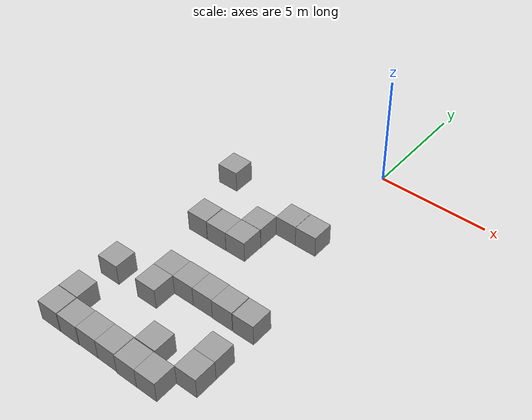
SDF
<sdf version="1.7">
 <model name="maze2.1">
  <link name="link_1_clone_132">
   <inertial>
    <mass>1</mass>
    <inertia>
     <ixx>0.166667</ixx>
     <ixy>0</ixy>
     <ixz>0</ixz>
     <iyy>0.166667</iyy>
     <iyz>0</iyz>
     <izz>0.166667</izz>
    </inertia>
   </inertial>
   <pose>-5.24618 -10.6208 0 0 -0 0</pose>
   <visual name="visual">
    <geometry><box><size>1 1 1</size></box></geometry>
    <material>
     <lighting>1</lighting>
     <script><uri>file://media/materials/scripts/gazebo.material</uri><name>Gazebo/Grey</name></script>
     <shader type="pixel"><normal_map>__default__</normal_map></shader>
     <ambient>0.3 0.3 0.3 1</ambient>
     <diffuse>0.7 0.7 0.7 1</diffuse>
     <specular>0.01 0.01 0.01 1</specular>
     <emissive>0 0 0 1</emissive>
    </material>
   </visual>
   <collision name="collision">
    <geometry><box><size>1 1 1</size></box></geometry>
    <surface>
     <friction>
      <ode><mu>1</mu><mu2>1</mu2><fdir1>0 0 0</fdir1><slip1>0</slip1><slip2>0</slip2></ode>
      <torsional>
       <coefficient>1</coefficient>
       <patch_radius>0</patch_radius>
       <surface_radius>0</surface_radius>
       <use_patch_radius>1</use_patch_radius>
       <ode><slip>0</slip></ode>
      </torsional>
     </friction>
     <bounce><restitution_coefficient>0</restitution_coefficient><threshold>1e+06</threshold></bounce>
     <contact>
      <collide_without_contact>0</collide_without_contact>
      <collide_without_contact_bitmask>1</collide_without_contact_bitmask>
      <collide_bitmask>1</collide_bitmask>
      <ode>
       <soft_cfm>0</soft_cfm>
       <soft_erp>0.2</soft_erp>
       <kp>1e+13</kp>
       <kd>1</kd>
       <max_vel>0.01</max_vel>
       <min_depth>0</min_depth>
      </ode>
      <bullet>
       <split_impulse>1</split_impulse>
       <split_impulse_penetration_threshold>-0.01</split_impulse_penetration_threshold>
       <soft_cfm>0</soft_cfm>
       <soft_erp>0.2</soft_erp>
       <kp>1e+13</kp>
       <kd>1</kd>
      </bullet>
     </contact>
    </surface>
   </collision>
  </link>
  <link name="link_1_clone_194">
   <inertial>
    <mass>1</mass>
    <inertia>
     <ixx>0.166667</ixx>
     <ixy>0</ixy>
     <ixz>0</ixz>
     <iyy>0.166667</iyy>
     <iyz>0</iyz>
     <izz>0.166667</izz>
    </inertia>
   </inertial>
   <pose>-1.24618 -4.62534 0 0 -0 0</pose>
   <visual name="visual">
    <geometry><box><size>1 1 1</size></box></geometry>
    <material>
     <lighting>1</lighting>
     <script><uri>file://media/materials/scripts/gazebo.material</uri><name>Gazebo/Grey</name></script>
     <shader type="pixel"><normal_map>__default__</normal_map></shader>
     <ambient>0.3 0.3 0.3 1</ambient>
     <diffuse>0.7 0.7 0.7 1</diffuse>
     <specular>0.01 0.01 0.01 1</specular>
     <emissive>0 0 0 1</emissive>
    </material>
   </visual>
   <collision name="collision">
    <geometry><box><size>1 1 1</size></box></geometry>
    <surface>
     <friction>
      <ode><mu>1</mu><mu2>1</mu2><fdir1>0 0 0</fdir1><slip1>0</slip1><slip2>0</slip2></ode>
      <torsional>
       <coefficient>1</coefficient>
       <patch_radius>0</patch_radius>
       <surface_radius>0</surface_radius>
       <use_patch_radius>1</use_patch_radius>
       <ode><slip>0</slip></ode>
      </torsional>
     </friction>
     <bounce><restitution_coefficient>0</restitution_coefficient><threshold>1e+06</threshold></bounce>
     <contact>
      <collide_without_contact>0</collide_without_contact>
      <collide_without_contact_bitmask>1</collide_without_contact_bitmask>
      <collide_bitmask>1</collide_bitmask>
      <ode>
       <soft_cfm>0</soft_cfm>
       <soft_erp>0.2</soft_erp>
       <kp>1e+13</kp>
       <kd>1</kd>
       <max_vel>0.01</max_vel>
       <min_depth>0</min_depth>
      </ode>
      <bullet>
       <split_impulse>1</split_impulse>
       <split_impulse_penetration_threshold>-0.01</split_impulse_penetration_threshold>
       <soft_cfm>0</soft_cfm>
       <soft_erp>0.2</soft_erp>
       <kp>1e+13</kp>
       <kd>1</kd>
      </bullet>
     </contact>
    </surface>
   </collision>
  </link>
  <link name="link_1_clone_195">
   <inertial>
    <mass>1</mass>
    <inertia>
     <ixx>0.166667</ixx>
     <ixy>0</ixy>
     <ixz>0</ixz>
     <iyy>0.166667</iyy>
     <iyz>0</iyz>
     <izz>0.166667</izz>
    </inertia>
   </inertial>
   <pose>-2.23778 -5.61487 0 0 -0 0</pose>
   <visual name="visual">
    <geometry><box><size>1 1 1</size></box></geometry>
    <material>
     <lighting>1</lighting>
     <script><uri>file://media/materials/scripts/gazebo.material</uri><name>Gazebo/Grey</name></script>
     <shader type="pixel"><normal_map>__default__</normal_map></shader>
     <ambient>0.3 0.3 0.3 1</ambient>
     <diffuse>0.7 0.7 0.7 1</diffuse>
     <specular>0.01 0.01 0.01 1</specular>
     <emissive>0 0 0 1</emissive>
    </material>
   </visual>
   <collision name="collision">
    <geometry><box><size>1 1 1</size></box></geometry>
    <surface>
     <friction>
      <ode><mu>1</mu><mu2>1</mu2><fdir1>0 0 0</fdir1><slip1>0</slip1><slip2>0</slip2></ode>
      <torsional>
       <coefficient>1</coefficient>
       <patch_radius>0</patch_radius>
       <surface_radius>0</surface_radius>
       <use_patch_radius>1</use_patch_radius>
       <ode><slip>0</slip></ode>
      </torsional>
     </friction>
     <bounce><restitution_coefficient>0</restitution_coefficient><threshold>1e+06</threshold></bounce>
     <contact>
      <collide_without_contact>0</collide_without_contact>
      <collide_without_contact_bitmask>1</collide_without_contact_bitmask>
      <collide_bitmask>1</collide_bitmask>
      <ode>
       <soft_cfm>0</soft_cfm>
       <soft_erp>0.2</soft_erp>
       <kp>1e+13</kp>
       <kd>1</kd>
       <max_vel>0.01</max_vel>
       <min_depth>0</min_depth>
      </ode>
      <bullet>
       <split_impulse>1</split_impulse>
       <split_impulse_penetration_threshold>-0.01</split_impulse_penetration_threshold>
       <soft_cfm>0</soft_cfm>
       <soft_erp>0.2</soft_erp>
       <kp>1e+13</kp>
       <kd>1</kd>
      </bullet>
     </contact>
    </surface>
   </collision>
  </link>
  <link name="link_1_clone_196">
   <inertial>
    <mass>1</mass>
    <inertia>
     <ixx>0.166667</ixx>
     <ixy>0</ixy>
     <ixz>0</ixz>
     <iyy>0.166667</iyy>
     <iyz>0</iyz>
     <izz>0.166667</izz>
    </inertia>
   </inertial>
   <pose>-3.23115 -6.62552 0 0 -0 0</pose>
   <visual name="visual">
    <geometry><box><size>1 1 1</size></box></geometry>
    <material>
     <lighting>1</lighting>
     <script><uri>file://media/materials/scripts/gazebo.material</uri><name>Gazebo/Grey</name></script>
     <shader type="pixel"><normal_map>__default__</normal_map></shader>
     <ambient>0.3 0.3 0.3 1</ambient>
     <diffuse>0.7 0.7 0.7 1</diffuse>
     <specular>0.01 0.01 0.01 1</specular>
     <emissive>0 0 0 1</emissive>
    </material>
   </visual>
   <collision name="collision">
    <geometry><box><size>1 1 1</size></box></geometry>
    <surface>
     <friction>
      <ode><mu>1</mu><mu2>1</mu2><fdir1>0 0 0</fdir1><slip1>0</slip1><slip2>0</slip2></ode>
      <torsional>
       <coefficient>1</coefficient>
       <patch_radius>0</patch_radius>
       <surface_radius>0</surface_radius>
       <use_patch_radius>1</use_patch_radius>
       <ode><slip>0</slip></ode>
      </torsional>
     </friction>
     <bounce><restitution_coefficient>0</restitution_coefficient><threshold>1e+06</threshold></bounce>
     <contact>
      <collide_without_contact>0</collide_without_contact>
      <collide_without_contact_bitmask>1</collide_without_contact_bitmask>
      <collide_bitmask>1</collide_bitmask>
      <ode>
       <soft_cfm>0</soft_cfm>
       <soft_erp>0.2</soft_erp>
       <kp>1e+13</kp>
       <kd>1</kd>
       <max_vel>0.01</max_vel>
       <min_depth>0</min_depth>
      </ode>
      <bullet>
       <split_impulse>1</split_impulse>
       <split_impulse_penetration_threshold>-0.01</split_impulse_penetration_threshold>
       <soft_cfm>0</soft_cfm>
       <soft_erp>0.2</soft_erp>
       <kp>1e+13</kp>
       <kd>1</kd>
      </bullet>
     </contact>
    </surface>
   </collision>
  </link>
  <link name="link_1_clone_197">
   <inertial>
    <mass>1</mass>
    <inertia>
     <ixx>0.166667</ixx>
     <ixy>0</ixy>
     <ixz>0</ixz>
     <iyy>0.166667</iyy>
     <iyz>0</iyz>
     <izz>0.166667</izz>
    </inertia>
   </inertial>
   <pose>-2.24816 -6.62026 0 0 -0 0</pose>
   <visual name="visual">
    <geometry><box><size>1 1 1</size></box></geometry>
    <material>
     <lighting>1</lighting>
     <script><uri>file://media/materials/scripts/gazebo.material</uri><name>Gazebo/Grey</name></script>
     <shader type="pixel"><normal_map>__default__</normal_map></shader>
     <ambient>0.3 0.3 0.3 1</ambient>
     <diffuse>0.7 0.7 0.7 1</diffuse>
     <specular>0.01 0.01 0.01 1</specular>
     <emissive>0 0 0 1</emissive>
    </material>
   </visual>
   <collision name="collision">
    <geometry><box><size>1 1 1</size></box></geometry>
    <surface>
     <friction>
      <ode><mu>1</mu><mu2>1</mu2><fdir1>0 0 0</fdir1><slip1>0</slip1><slip2>0</slip2></ode>
      <torsional>
       <coefficient>1</coefficient>
       <patch_radius>0</patch_radius>
       <surface_radius>0</surface_radius>
       <use_patch_radius>1</use_patch_radius>
       <ode><slip>0</slip></ode>
      </torsional>
     </friction>
     <bounce><restitution_coefficient>0</restitution_coefficient><threshold>1e+06</threshold></bounce>
     <contact>
      <collide_without_contact>0</collide_without_contact>
      <collide_without_contact_bitmask>1</collide_without_contact_bitmask>
      <collide_bitmask>1</collide_bitmask>
      <ode>
       <soft_cfm>0</soft_cfm>
       <soft_erp>0.2</soft_erp>
       <kp>1e+13</kp>
       <kd>1</kd>
       <max_vel>0.01</max_vel>
       <min_depth>0</min_depth>
      </ode>
      <bullet>
       <split_impulse>1</split_impulse>
       <split_impulse_penetration_threshold>-0.01</split_impulse_penetration_threshold>
       <soft_cfm>0</soft_cfm>
       <soft_erp>0.2</soft_erp>
       <kp>1e+13</kp>
       <kd>1</kd>
      </bullet>
     </contact>
    </surface>
   </collision>
  </link>
  <link name="link_1_clone_198">
   <inertial>
    <mass>1</mass>
    <inertia>
     <ixx>0.166667</ixx>
     <ixy>0</ixy>
     <ixz>0</ixz>
     <iyy>0.166667</iyy>
     <iyz>0</iyz>
     <izz>0.166667</izz>
    </inertia>
   </inertial>
   <pose>-1.26121 -9.60172 0 0 -0 0</pose>
   <visual name="visual">
    <geometry><box><size>1 1 1</size></box></geometry>
    <material>
     <lighting>1</lighting>
     <script><uri>file://media/materials/scripts/gazebo.material</uri><name>Gazebo/Grey</name></script>
     <shader type="pixel"><normal_map>__default__</normal_map></shader>
     <ambient>0.3 0.3 0.3 1</ambient>
     <diffuse>0.7 0.7 0.7 1</diffuse>
     <specular>0.01 0.01 0.01 1</specular>
     <emissive>0 0 0 1</emissive>
    </material>
   </visual>
   <collision name="collision">
    <geometry><box><size>1 1 1</size></box></geometry>
    <surface>
     <friction>
      <ode><mu>1</mu><mu2>1</mu2><fdir1>0 0 0</fdir1><slip1>0</slip1><slip2>0</slip2></ode>
      <torsional>
       <coefficient>1</coefficient>
       <patch_radius>0</patch_radius>
       <surface_radius>0</surface_radius>
       <use_patch_radius>1</use_patch_radius>
       <ode><slip>0</slip></ode>
      </torsional>
     </friction>
     <bounce><restitution_coefficient>0</restitution_coefficient><threshold>1e+06</threshold></bounce>
     <contact>
      <collide_without_contact>0</collide_without_contact>
      <collide_without_contact_bitmask>1</collide_without_contact_bitmask>
      <collide_bitmask>1</collide_bitmask>
      <ode>
       <soft_cfm>0</soft_cfm>
       <soft_erp>0.2</soft_erp>
       <kp>1e+13</kp>
       <kd>1</kd>
       <max_vel>0.01</max_vel>
       <min_depth>0</min_depth>
      </ode>
      <bullet>
       <split_impulse>1</split_impulse>
       <split_impulse_penetration_threshold>-0.01</split_impulse_penetration_threshold>
       <soft_cfm>0</soft_cfm>
       <soft_erp>0.2</soft_erp>
       <kp>1e+13</kp>
       <kd>1</kd>
      </bullet>
     </contact>
    </surface>
   </collision>
  </link>
  <link name="link_1_clone_199">
   <inertial>
    <mass>1</mass>
    <inertia>
     <ixx>0.166667</ixx>
     <ixy>0</ixy>
     <ixz>0</ixz>
     <iyy>0.166667</iyy>
     <iyz>0</iyz>
     <izz>0.166667</izz>
    </inertia>
   </inertial>
   <pose>-1.23081 -12.6054 0 0 -0 0</pose>
   <visual name="visual">
    <geometry><box><size>1 1 1</size></box></geometry>
    <material>
     <lighting>1</lighting>
     <script><uri>file://media/materials/scripts/gazebo.material</uri><name>Gazebo/Grey</name></script>
     <shader type="pixel"><normal_map>__default__</normal_map></shader>
     <ambient>0.3 0.3 0.3 1</ambient>
     <diffuse>0.7 0.7 0.7 1</diffuse>
     <specular>0.01 0.01 0.01 1</specular>
     <emissive>0 0 0 1</emissive>
    </material>
   </visual>
   <collision name="collision">
    <geometry><box><size>1 1 1</size></box></geometry>
    <surface>
     <friction>
      <ode><mu>1</mu><mu2>1</mu2><fdir1>0 0 0</fdir1><slip1>0</slip1><slip2>0</slip2></ode>
      <torsional>
       <coefficient>1</coefficient>
       <patch_radius>0</patch_radius>
       <surface_radius>0</surface_radius>
       <use_patch_radius>1</use_patch_radius>
       <ode><slip>0</slip></ode>
      </torsional>
     </friction>
     <bounce><restitution_coefficient>0</restitution_coefficient><threshold>1e+06</threshold></bounce>
     <contact>
      <collide_without_contact>0</collide_without_contact>
      <collide_without_contact_bitmask>1</collide_without_contact_bitmask>
      <collide_bitmask>1</collide_bitmask>
      <ode>
       <soft_cfm>0</soft_cfm>
       <soft_erp>0.2</soft_erp>
       <kp>1e+13</kp>
       <kd>1</kd>
       <max_vel>0.01</max_vel>
       <min_depth>0</min_depth>
      </ode>
      <bullet>
       <split_impulse>1</split_impulse>
       <split_impulse_penetration_threshold>-0.01</split_impulse_penetration_threshold>
       <soft_cfm>0</soft_cfm>
       <soft_erp>0.2</soft_erp>
       <kp>1e+13</kp>
       <kd>1</kd>
      </bullet>
     </contact>
    </surface>
   </collision>
  </link>
  <link name="link_1_clone_200">
   <inertial>
    <mass>1</mass>
    <inertia>
     <ixx>0.166667</ixx>
     <ixy>0</ixy>
     <ixz>0</ixz>
     <iyy>0.166667</iyy>
     <iyz>0</iyz>
     <izz>0.166667</izz>
    </inertia>
   </inertial>
   <pose>-0.276214 -9.61663 0 0 -0 0</pose>
   <visual name="visual">
    <geometry><box><size>1 1 1</size></box></geometry>
    <material>
     <lighting>1</lighting>
     <script><uri>file://media/materials/scripts/gazebo.material</uri><name>Gazebo/Grey</name></script>
     <shader type="pixel"><normal_map>__default__</normal_map></shader>
     <ambient>0.3 0.3 0.3 1</ambient>
     <diffuse>0.7 0.7 0.7 1</diffuse>
     <specular>0.01 0.01 0.01 1</specular>
     <emissive>0 0 0 1</emissive>
    </material>
   </visual>
   <collision name="collision">
    <geometry><box><size>1 1 1</size></box></geometry>
    <surface>
     <friction>
      <ode><mu>1</mu><mu2>1</mu2><fdir1>0 0 0</fdir1><slip1>0</slip1><slip2>0</slip2></ode>
      <torsional>
       <coefficient>1</coefficient>
       <patch_radius>0</patch_radius>
       <surface_radius>0</surface_radius>
       <use_patch_radius>1</use_patch_radius>
       <ode><slip>0</slip></ode>
      </torsional>
     </friction>
     <bounce><restitution_coefficient>0</restitution_coefficient><threshold>1e+06</threshold></bounce>
     <contact>
      <collide_without_contact>0</collide_without_contact>
      <collide_without_contact_bitmask>1</collide_without_contact_bitmask>
      <collide_bitmask>1</collide_bitmask>
      <ode>
       <soft_cfm>0</soft_cfm>
       <soft_erp>0.2</soft_erp>
       <kp>1e+13</kp>
       <kd>1</kd>
       <max_vel>0.01</max_vel>
       <min_depth>0</min_depth>
      </ode>
      <bullet>
       <split_impulse>1</split_impulse>
       <split_impulse_penetration_threshold>-0.01</split_impulse_penetration_threshold>
       <soft_cfm>0</soft_cfm>
       <soft_erp>0.2</soft_erp>
       <kp>1e+13</kp>
       <kd>1</kd>
      </bullet>
     </contact>
    </surface>
   </collision>
  </link>
  <link name="link_1_clone_202">
   <inertial>
    <mass>1</mass>
    <inertia>
     <ixx>0.166667</ixx>
     <ixy>0</ixy>
     <ixz>0</ixz>
     <iyy>0.166667</iyy>
     <iyz>0</iyz>
     <izz>0.166667</izz>
    </inertia>
   </inertial>
   <pose>0.753816 -9.62535 0 0 -0 0</pose>
   <visual name="visual">
    <geometry><box><size>1 1 1</size></box></geometry>
    <material>
     <lighting>1</lighting>
     <script><uri>file://media/materials/scripts/gazebo.material</uri><name>Gazebo/Grey</name></script>
     <shader type="pixel"><normal_map>__default__</normal_map></shader>
     <ambient>0.3 0.3 0.3 1</ambient>
     <diffuse>0.7 0.7 0.7 1</diffuse>
     <specular>0.01 0.01 0.01 1</specular>
     <emissive>0 0 0 1</emissive>
    </material>
   </visual>
   <collision name="collision">
    <geometry><box><size>1 1 1</size></box></geometry>
    <surface>
     <friction>
      <ode><mu>1</mu><mu2>1</mu2><fdir1>0 0 0</fdir1><slip1>0</slip1><slip2>0</slip2></ode>
      <torsional>
       <coefficient>1</coefficient>
       <patch_radius>0</patch_radius>
       <surface_radius>0</surface_radius>
       <use_patch_radius>1</use_patch_radius>
       <ode><slip>0</slip></ode>
      </torsional>
     </friction>
     <bounce><restitution_coefficient>0</restitution_coefficient><threshold>1e+06</threshold></bounce>
     <contact>
      <collide_without_contact>0</collide_without_contact>
      <collide_without_contact_bitmask>1</collide_without_contact_bitmask>
      <collide_bitmask>1</collide_bitmask>
      <ode>
       <soft_cfm>0</soft_cfm>
       <soft_erp>0.2</soft_erp>
       <kp>1e+13</kp>
       <kd>1</kd>
       <max_vel>0.01</max_vel>
       <min_depth>0</min_depth>
      </ode>
      <bullet>
       <split_impulse>1</split_impulse>
       <split_impulse_penetration_threshold>-0.01</split_impulse_penetration_threshold>
       <soft_cfm>0</soft_cfm>
       <soft_erp>0.2</soft_erp>
       <kp>1e+13</kp>
       <kd>1</kd>
      </bullet>
     </contact>
    </surface>
   </collision>
  </link>
  <link name="link_1_clone_203">
   <inertial>
    <mass>1</mass>
    <inertia>
     <ixx>0.166667</ixx>
     <ixy>0</ixy>
     <ixz>0</ixz>
     <iyy>0.166667</iyy>
     <iyz>0</iyz>
     <izz>0.166667</izz>
    </inertia>
   </inertial>
   <pose>-2.24618 -9.60158 0 0 -0 0</pose>
   <visual name="visual">
    <geometry><box><size>1 1 1</size></box></geometry>
    <material>
     <lighting>1</lighting>
     <script><uri>file://media/materials/scripts/gazebo.material</uri><name>Gazebo/Grey</name></script>
     <shader type="pixel"><normal_map>__default__</normal_map></shader>
     <ambient>0.3 0.3 0.3 1</ambient>
     <diffuse>0.7 0.7 0.7 1</diffuse>
     <specular>0.01 0.01 0.01 1</specular>
     <emissive>0 0 0 1</emissive>
    </material>
   </visual>
   <collision name="collision">
    <geometry><box><size>1 1 1</size></box></geometry>
    <surface>
     <friction>
      <ode><mu>1</mu><mu2>1</mu2><fdir1>0 0 0</fdir1><slip1>0</slip1><slip2>0</slip2></ode>
      <torsional>
       <coefficient>1</coefficient>
       <patch_radius>0</patch_radius>
       <surface_radius>0</surface_radius>
       <use_patch_radius>1</use_patch_radius>
       <ode><slip>0</slip></ode>
      </torsional>
     </friction>
     <bounce><restitution_coefficient>0</restitution_coefficient><threshold>1e+06</threshold></bounce>
     <contact>
      <collide_without_contact>0</collide_without_contact>
      <collide_without_contact_bitmask>1</collide_without_contact_bitmask>
      <collide_bitmask>1</collide_bitmask>
      <ode>
       <soft_cfm>0</soft_cfm>
       <soft_erp>0.2</soft_erp>
       <kp>1e+13</kp>
       <kd>1</kd>
       <max_vel>0.01</max_vel>
       <min_depth>0</min_depth>
      </ode>
      <bullet>
       <split_impulse>1</split_impulse>
       <split_impulse_penetration_threshold>-0.01</split_impulse_penetration_threshold>
       <soft_cfm>0</soft_cfm>
       <soft_erp>0.2</soft_erp>
       <kp>1e+13</kp>
       <kd>1</kd>
      </bullet>
     </contact>
    </surface>
   </collision>
  </link>
  <link name="link_1_clone_204">
   <inertial>
    <mass>1</mass>
    <inertia>
     <ixx>0.166667</ixx>
     <ixy>0</ixy>
     <ixz>0</ixz>
     <iyy>0.166667</iyy>
     <iyz>0</iyz>
     <izz>0.166667</izz>
    </inertia>
   </inertial>
   <pose>-3.24618 -10.5931 0 0 -0 0</pose>
   <visual name="visual">
    <geometry><box><size>1 1 1</size></box></geometry>
    <material>
     <lighting>1</lighting>
     <script><uri>file://media/materials/scripts/gazebo.material</uri><name>Gazebo/Grey</name></script>
     <shader type="pixel"><normal_map>__default__</normal_map></shader>
     <ambient>0.3 0.3 0.3 1</ambient>
     <diffuse>0.7 0.7 0.7 1</diffuse>
     <specular>0.01 0.01 0.01 1</specular>
     <emissive>0 0 0 1</emissive>
    </material>
   </visual>
   <collision name="collision">
    <geometry><box><size>1 1 1</size></box></geometry>
    <surface>
     <friction>
      <ode><mu>1</mu><mu2>1</mu2><fdir1>0 0 0</fdir1><slip1>0</slip1><slip2>0</slip2></ode>
      <torsional>
       <coefficient>1</coefficient>
       <patch_radius>0</patch_radius>
       <surface_radius>0</surface_radius>
       <use_patch_radius>1</use_patch_radius>
       <ode><slip>0</slip></ode>
      </torsional>
     </friction>
     <bounce><restitution_coefficient>0</restitution_coefficient><threshold>1e+06</threshold></bounce>
     <contact>
      <collide_without_contact>0</collide_without_contact>
      <collide_without_contact_bitmask>1</collide_without_contact_bitmask>
      <collide_bitmask>1</collide_bitmask>
      <ode>
       <soft_cfm>0</soft_cfm>
       <soft_erp>0.2</soft_erp>
       <kp>1e+13</kp>
       <kd>1</kd>
       <max_vel>0.01</max_vel>
       <min_depth>0</min_depth>
      </ode>
      <bullet>
       <split_impulse>1</split_impulse>
       <split_impulse_penetration_threshold>-0.01</split_impulse_penetration_threshold>
       <soft_cfm>0</soft_cfm>
       <soft_erp>0.2</soft_erp>
       <kp>1e+13</kp>
       <kd>1</kd>
      </bullet>
     </contact>
    </surface>
   </collision>
  </link>
  <link name="link_1_clone_205">
   <inertial>
    <mass>1</mass>
    <inertia>
     <ixx>0.166667</ixx>
     <ixy>0</ixy>
     <ixz>0</ixz>
     <iyy>0.166667</iyy>
     <iyz>0</iyz>
     <izz>0.166667</izz>
    </inertia>
   </inertial>
   <pose>-3.24618 -9.62535 0 0 -0 0</pose>
   <visual name="visual">
    <geometry><box><size>1 1 1</size></box></geometry>
    <material>
     <lighting>1</lighting>
     <script><uri>file://media/materials/scripts/gazebo.material</uri><name>Gazebo/Grey</name></script>
     <shader type="pixel"><normal_map>__default__</normal_map></shader>
     <ambient>0.3 0.3 0.3 1</ambient>
     <diffuse>0.7 0.7 0.7 1</diffuse>
     <specular>0.01 0.01 0.01 1</specular>
     <emissive>0 0 0 1</emissive>
    </material>
   </visual>
   <collision name="collision">
    <geometry><box><size>1 1 1</size></box></geometry>
    <surface>
     <friction>
      <ode><mu>1</mu><mu2>1</mu2><fdir1>0 0 0</fdir1><slip1>0</slip1><slip2>0</slip2></ode>
      <torsional>
       <coefficient>1</coefficient>
       <patch_radius>0</patch_radius>
       <surface_radius>0</surface_radius>
       <use_patch_radius>1</use_patch_radius>
       <ode><slip>0</slip></ode>
      </torsional>
     </friction>
     <bounce><restitution_coefficient>0</restitution_coefficient><threshold>1e+06</threshold></bounce>
     <contact>
      <collide_without_contact>0</collide_without_contact>
      <collide_without_contact_bitmask>1</collide_without_contact_bitmask>
      <collide_bitmask>1</collide_bitmask>
      <ode>
       <soft_cfm>0</soft_cfm>
       <soft_erp>0.2</soft_erp>
       <kp>1e+13</kp>
       <kd>1</kd>
       <max_vel>0.01</max_vel>
       <min_depth>0</min_depth>
      </ode>
      <bullet>
       <split_impulse>1</split_impulse>
       <split_impulse_penetration_threshold>-0.01</split_impulse_penetration_threshold>
       <soft_cfm>0</soft_cfm>
       <soft_erp>0.2</soft_erp>
       <kp>1e+13</kp>
       <kd>1</kd>
      </bullet>
     </contact>
    </surface>
   </collision>
  </link>
  <link name="link_1_clone_213">
   <inertial>
    <mass>1</mass>
    <inertia>
     <ixx>0.166667</ixx>
     <ixy>0</ixy>
     <ixz>0</ixz>
     <iyy>0.166667</iyy>
     <iyz>0</iyz>
     <izz>0.166667</izz>
    </inertia>
   </inertial>
   <pose>-4.25444 -6.61803 0 0 -0 0</pose>
   <visual name="visual">
    <geometry><box><size>1 1 1</size></box></geometry>
    <material>
     <lighting>1</lighting>
     <script><uri>file://media/materials/scripts/gazebo.material</uri><name>Gazebo/Grey</name></script>
     <shader type="pixel"><normal_map>__default__</normal_map></shader>
     <ambient>0.3 0.3 0.3 1</ambient>
     <diffuse>0.7 0.7 0.7 1</diffuse>
     <specular>0.01 0.01 0.01 1</specular>
     <emissive>0 0 0 1</emissive>
    </material>
   </visual>
   <collision name="collision">
    <geometry><box><size>1 1 1</size></box></geometry>
    <surface>
     <friction>
      <ode><mu>1</mu><mu2>1</mu2><fdir1>0 0 0</fdir1><slip1>0</slip1><slip2>0</slip2></ode>
      <torsional>
       <coefficient>1</coefficient>
       <patch_radius>0</patch_radius>
       <surface_radius>0</surface_radius>
       <use_patch_radius>1</use_patch_radius>
       <ode><slip>0</slip></ode>
      </torsional>
     </friction>
     <bounce><restitution_coefficient>0</restitution_coefficient><threshold>1e+06</threshold></bounce>
     <contact>
      <collide_without_contact>0</collide_without_contact>
      <collide_without_contact_bitmask>1</collide_without_contact_bitmask>
      <collide_bitmask>1</collide_bitmask>
      <ode>
       <soft_cfm>0</soft_cfm>
       <soft_erp>0.2</soft_erp>
       <kp>1e+13</kp>
       <kd>1</kd>
       <max_vel>0.01</max_vel>
       <min_depth>0</min_depth>
      </ode>
      <bullet>
       <split_impulse>1</split_impulse>
       <split_impulse_penetration_threshold>-0.01</split_impulse_penetration_threshold>
       <soft_cfm>0</soft_cfm>
       <soft_erp>0.2</soft_erp>
       <kp>1e+13</kp>
       <kd>1</kd>
      </bullet>
     </contact>
    </surface>
   </collision>
  </link>
  <link name="link_1_clone_214">
   <inertial>
    <mass>1</mass>
    <inertia>
     <ixx>0.166667</ixx>
     <ixy>0</ixy>
     <ixz>0</ixz>
     <iyy>0.166667</iyy>
     <iyz>0</iyz>
     <izz>0.166667</izz>
    </inertia>
   </inertial>
   <pose>-5.24618 -12.6053 0 0 -0 0</pose>
   <visual name="visual">
    <geometry><box><size>1 1 1</size></box></geometry>
    <material>
     <lighting>1</lighting>
     <script><uri>file://media/materials/scripts/gazebo.material</uri><name>Gazebo/Grey</name></script>
     <shader type="pixel"><normal_map>__default__</normal_map></shader>
     <ambient>0.3 0.3 0.3 1</ambient>
     <diffuse>0.7 0.7 0.7 1</diffuse>
     <specular>0.01 0.01 0.01 1</specular>
     <emissive>0 0 0 1</emissive>
    </material>
   </visual>
   <collision name="collision">
    <geometry><box><size>1 1 1</size></box></geometry>
    <surface>
     <friction>
      <ode><mu>1</mu><mu2>1</mu2><fdir1>0 0 0</fdir1><slip1>0</slip1><slip2>0</slip2></ode>
      <torsional>
       <coefficient>1</coefficient>
       <patch_radius>0</patch_radius>
       <surface_radius>0</surface_radius>
       <use_patch_radius>1</use_patch_radius>
       <ode><slip>0</slip></ode>
      </torsional>
     </friction>
     <bounce><restitution_coefficient>0</restitution_coefficient><threshold>1e+06</threshold></bounce>
     <contact>
      <collide_without_contact>0</collide_without_contact>
      <collide_without_contact_bitmask>1</collide_without_contact_bitmask>
      <collide_bitmask>1</collide_bitmask>
      <ode>
       <soft_cfm>0</soft_cfm>
       <soft_erp>0.2</soft_erp>
       <kp>1e+13</kp>
       <kd>1</kd>
       <max_vel>0.01</max_vel>
       <min_depth>0</min_depth>
      </ode>
      <bullet>
       <split_impulse>1</split_impulse>
       <split_impulse_penetration_threshold>-0.01</split_impulse_penetration_threshold>
       <soft_cfm>0</soft_cfm>
       <soft_erp>0.2</soft_erp>
       <kp>1e+13</kp>
       <kd>1</kd>
      </bullet>
     </contact>
    </surface>
   </collision>
  </link>
  <link name="link_1_clone_39">
   <inertial>
    <mass>1</mass>
    <inertia>
     <ixx>0.166667</ixx>
     <ixy>0</ixy>
     <ixz>0</ixz>
     <iyy>0.166667</iyy>
     <iyz>0</iyz>
     <izz>0.166667</izz>
    </inertia>
   </inertial>
   <pose>-5.24618 -13.6207 0 0 -0 0</pose>
   <visual name="visual">
    <geometry><box><size>1 1 1</size></box></geometry>
    <material>
     <lighting>1</lighting>
     <script><uri>file://media/materials/scripts/gazebo.material</uri><name>Gazebo/Grey</name></script>
     <shader type="pixel"><normal_map>__default__</normal_map></shader>
     <ambient>0.3 0.3 0.3 1</ambient>
     <diffuse>0.7 0.7 0.7 1</diffuse>
     <specular>0.01 0.01 0.01 1</specular>
     <emissive>0 0 0 1</emissive>
    </material>
   </visual>
   <collision name="collision">
    <geometry><box><size>1 1 1</size></box></geometry>
    <surface>
     <friction>
      <ode><mu>1</mu><mu2>1</mu2><fdir1>0 0 0</fdir1><slip1>0</slip1><slip2>0</slip2></ode>
      <torsional>
       <coefficient>1</coefficient>
       <patch_radius>0</patch_radius>
       <surface_radius>0</surface_radius>
       <use_patch_radius>1</use_patch_radius>
       <ode><slip>0</slip></ode>
      </torsional>
     </friction>
     <bounce><restitution_coefficient>0</restitution_coefficient><threshold>1e+06</threshold></bounce>
     <contact>
      <collide_without_contact>0</collide_without_contact>
      <collide_without_contact_bitmask>1</collide_without_contact_bitmask>
      <collide_bitmask>1</collide_bitmask>
      <ode>
       <soft_cfm>0</soft_cfm>
       <soft_erp>0.2</soft_erp>
       <kp>1e+13</kp>
       <kd>1</kd>
       <max_vel>0.01</max_vel>
       <min_depth>0</min_depth>
      </ode>
      <bullet>
       <split_impulse>1</split_impulse>
       <split_impulse_penetration_threshold>-0.01</split_impulse_penetration_threshold>
       <soft_cfm>0</soft_cfm>
       <soft_erp>0.2</soft_erp>
       <kp>1e+13</kp>
       <kd>1</kd>
      </bullet>
     </contact>
    </surface>
   </collision>
  </link>
  <link name="link_1_clone_40">
   <inertial>
    <mass>1</mass>
    <inertia>
     <ixx>0.166667</ixx>
     <ixy>0</ixy>
     <ixz>0</ixz>
     <iyy>0.166667</iyy>
     <iyz>0</iyz>
     <izz>0.166667</izz>
    </inertia>
   </inertial>
   <pose>-4.21546 -13.6206 0 0 -0 0</pose>
   <visual name="visual">
    <geometry><box><size>1 1 1</size></box></geometry>
    <material>
     <lighting>1</lighting>
     <script><uri>file://media/materials/scripts/gazebo.material</uri><name>Gazebo/Grey</name></script>
     <shader type="pixel"><normal_map>__default__</normal_map></shader>
     <ambient>0.3 0.3 0.3 1</ambient>
     <diffuse>0.7 0.7 0.7 1</diffuse>
     <specular>0.01 0.01 0.01 1</specular>
     <emissive>0 0 0 1</emissive>
    </material>
   </visual>
   <collision name="collision">
    <geometry><box><size>1 1 1</size></box></geometry>
    <surface>
     <friction>
      <ode><mu>1</mu><mu2>1</mu2><fdir1>0 0 0</fdir1><slip1>0</slip1><slip2>0</slip2></ode>
      <torsional>
       <coefficient>1</coefficient>
       <patch_radius>0</patch_radius>
       <surface_radius>0</surface_radius>
       <use_patch_radius>1</use_patch_radius>
       <ode><slip>0</slip></ode>
      </torsional>
     </friction>
     <bounce><restitution_coefficient>0</restitution_coefficient><threshold>1e+06</threshold></bounce>
     <contact>
      <collide_without_contact>0</collide_without_contact>
      <collide_without_contact_bitmask>1</collide_without_contact_bitmask>
      <collide_bitmask>1</collide_bitmask>
      <ode>
       <soft_cfm>0</soft_cfm>
       <soft_erp>0.2</soft_erp>
       <kp>1e+13</kp>
       <kd>1</kd>
       <max_vel>0.01</max_vel>
       <min_depth>0</min_depth>
      </ode>
      <bullet>
       <split_impulse>1</split_impulse>
       <split_impulse_penetration_threshold>-0.01</split_impulse_penetration_threshold>
       <soft_cfm>0</soft_cfm>
       <soft_erp>0.2</soft_erp>
       <kp>1e+13</kp>
       <kd>1</kd>
      </bullet>
     </contact>
    </surface>
   </collision>
  </link>
  <link name="link_1_clone_41">
   <inertial>
    <mass>1</mass>
    <inertia>
     <ixx>0.166667</ixx>
     <ixy>0</ixy>
     <ixz>0</ixz>
     <iyy>0.166667</iyy>
     <iyz>0</iyz>
     <izz>0.166667</izz>
    </inertia>
   </inertial>
   <pose>-3.23087 -13.6054 0 0 -0 0</pose>
   <visual name="visual">
    <geometry><box><size>1 1 1</size></box></geometry>
    <material>
     <lighting>1</lighting>
     <script><uri>file://media/materials/scripts/gazebo.material</uri><name>Gazebo/Grey</name></script>
     <shader type="pixel"><normal_map>__default__</normal_map></shader>
     <ambient>0.3 0.3 0.3 1</ambient>
     <diffuse>0.7 0.7 0.7 1</diffuse>
     <specular>0.01 0.01 0.01 1</specular>
     <emissive>0 0 0 1</emissive>
    </material>
   </visual>
   <collision name="collision">
    <geometry><box><size>1 1 1</size></box></geometry>
    <surface>
     <friction>
      <ode><mu>1</mu><mu2>1</mu2><fdir1>0 0 0</fdir1><slip1>0</slip1><slip2>0</slip2></ode>
      <torsional>
       <coefficient>1</coefficient>
       <patch_radius>0</patch_radius>
       <surface_radius>0</surface_radius>
       <use_patch_radius>1</use_patch_radius>
       <ode><slip>0</slip></ode>
      </torsional>
     </friction>
     <bounce><restitution_coefficient>0</restitution_coefficient><threshold>1e+06</threshold></bounce>
     <contact>
      <collide_without_contact>0</collide_without_contact>
      <collide_without_contact_bitmask>1</collide_without_contact_bitmask>
      <collide_bitmask>1</collide_bitmask>
      <ode>
       <soft_cfm>0</soft_cfm>
       <soft_erp>0.2</soft_erp>
       <kp>1e+13</kp>
       <kd>1</kd>
       <max_vel>0.01</max_vel>
       <min_depth>0</min_depth>
      </ode>
      <bullet>
       <split_impulse>1</split_impulse>
       <split_impulse_penetration_threshold>-0.01</split_impulse_penetration_threshold>
       <soft_cfm>0</soft_cfm>
       <soft_erp>0.2</soft_erp>
       <kp>1e+13</kp>
       <kd>1</kd>
      </bullet>
     </contact>
    </surface>
   </collision>
  </link>
  <link name="link_1_clone_42">
   <inertial>
    <mass>1</mass>
    <inertia>
     <ixx>0.166667</ixx>
     <ixy>0</ixy>
     <ixz>0</ixz>
     <iyy>0.166667</iyy>
     <iyz>0</iyz>
     <izz>0.166667</izz>
    </inertia>
   </inertial>
   <pose>-2.24618 -13.6053 0 0 -0 0</pose>
   <visual name="visual">
    <geometry><box><size>1 1 1</size></box></geometry>
    <material>
     <lighting>1</lighting>
     <script><uri>file://media/materials/scripts/gazebo.material</uri><name>Gazebo/Grey</name></script>
     <shader type="pixel"><normal_map>__default__</normal_map></shader>
     <ambient>0.3 0.3 0.3 1</ambient>
     <diffuse>0.7 0.7 0.7 1</diffuse>
     <specular>0.01 0.01 0.01 1</specular>
     <emissive>0 0 0 1</emissive>
    </material>
   </visual>
   <collision name="collision">
    <geometry><box><size>1 1 1</size></box></geometry>
    <surface>
     <friction>
      <ode><mu>1</mu><mu2>1</mu2><fdir1>0 0 0</fdir1><slip1>0</slip1><slip2>0</slip2></ode>
      <torsional>
       <coefficient>1</coefficient>
       <patch_radius>0</patch_radius>
       <surface_radius>0</surface_radius>
       <use_patch_radius>1</use_patch_radius>
       <ode><slip>0</slip></ode>
      </torsional>
     </friction>
     <bounce><restitution_coefficient>0</restitution_coefficient><threshold>1e+06</threshold></bounce>
     <contact>
      <collide_without_contact>0</collide_without_contact>
      <collide_without_contact_bitmask>1</collide_without_contact_bitmask>
      <collide_bitmask>1</collide_bitmask>
      <ode>
       <soft_cfm>0</soft_cfm>
       <soft_erp>0.2</soft_erp>
       <kp>1e+13</kp>
       <kd>1</kd>
       <max_vel>0.01</max_vel>
       <min_depth>0</min_depth>
      </ode>
      <bullet>
       <split_impulse>1</split_impulse>
       <split_impulse_penetration_threshold>-0.01</split_impulse_penetration_threshold>
       <soft_cfm>0</soft_cfm>
       <soft_erp>0.2</soft_erp>
       <kp>1e+13</kp>
       <kd>1</kd>
      </bullet>
     </contact>
    </surface>
   </collision>
  </link>
  <link name="link_1_clone_43">
   <inertial>
    <mass>1</mass>
    <inertia>
     <ixx>0.166667</ixx>
     <ixy>0</ixy>
     <ixz>0</ixz>
     <iyy>0.166667</iyy>
     <iyz>0</iyz>
     <izz>0.166667</izz>
    </inertia>
   </inertial>
   <pose>-1.23083 -13.6362 0 0 -0 0</pose>
   <visual name="visual">
    <geometry><box><size>1 1 1</size></box></geometry>
    <material>
     <lighting>1</lighting>
     <script><uri>file://media/materials/scripts/gazebo.material</uri><name>Gazebo/Grey</name></script>
     <shader type="pixel"><normal_map>__default__</normal_map></shader>
     <ambient>0.3 0.3 0.3 1</ambient>
     <diffuse>0.7 0.7 0.7 1</diffuse>
     <specular>0.01 0.01 0.01 1</specular>
     <emissive>0 0 0 1</emissive>
    </material>
   </visual>
   <collision name="collision">
    <geometry><box><size>1 1 1</size></box></geometry>
    <surface>
     <friction>
      <ode><mu>1</mu><mu2>1</mu2><fdir1>0 0 0</fdir1><slip1>0</slip1><slip2>0</slip2></ode>
      <torsional>
       <coefficient>1</coefficient>
       <patch_radius>0</patch_radius>
       <surface_radius>0</surface_radius>
       <use_patch_radius>1</use_patch_radius>
       <ode><slip>0</slip></ode>
      </torsional>
     </friction>
     <bounce><restitution_coefficient>0</restitution_coefficient><threshold>1e+06</threshold></bounce>
     <contact>
      <collide_without_contact>0</collide_without_contact>
      <collide_without_contact_bitmask>1</collide_without_contact_bitmask>
      <collide_bitmask>1</collide_bitmask>
      <ode>
       <soft_cfm>0</soft_cfm>
       <soft_erp>0.2</soft_erp>
       <kp>1e+13</kp>
       <kd>1</kd>
       <max_vel>0.01</max_vel>
       <min_depth>0</min_depth>
      </ode>
      <bullet>
       <split_impulse>1</split_impulse>
       <split_impulse_penetration_threshold>-0.01</split_impulse_penetration_threshold>
       <soft_cfm>0</soft_cfm>
       <soft_erp>0.2</soft_erp>
       <kp>1e+13</kp>
       <kd>1</kd>
      </bullet>
     </contact>
    </surface>
   </collision>
  </link>
  <link name="link_1_clone_44">
   <inertial>
    <mass>1</mass>
    <inertia>
     <ixx>0.166667</ixx>
     <ixy>0</ixy>
     <ixz>0</ixz>
     <iyy>0.166667</iyy>
     <iyz>0</iyz>
     <izz>0.166667</izz>
    </inertia>
   </inertial>
   <pose>-0.246184 -13.6361 0 0 -0 0</pose>
   <visual name="visual">
    <geometry><box><size>1 1 1</size></box></geometry>
    <material>
     <lighting>1</lighting>
     <script><uri>file://media/materials/scripts/gazebo.material</uri><name>Gazebo/Grey</name></script>
     <shader type="pixel"><normal_map>__default__</normal_map></shader>
     <ambient>0.3 0.3 0.3 1</ambient>
     <diffuse>0.7 0.7 0.7 1</diffuse>
     <specular>0.01 0.01 0.01 1</specular>
     <emissive>0 0 0 1</emissive>
    </material>
   </visual>
   <collision name="collision">
    <geometry><box><size>1 1 1</size></box></geometry>
    <surface>
     <friction>
      <ode><mu>1</mu><mu2>1</mu2><fdir1>0 0 0</fdir1><slip1>0</slip1><slip2>0</slip2></ode>
      <torsional>
       <coefficient>1</coefficient>
       <patch_radius>0</patch_radius>
       <surface_radius>0</surface_radius>
       <use_patch_radius>1</use_patch_radius>
       <ode><slip>0</slip></ode>
      </torsional>
     </friction>
     <bounce><restitution_coefficient>0</restitution_coefficient><threshold>1e+06</threshold></bounce>
     <contact>
      <collide_without_contact>0</collide_without_contact>
      <collide_without_contact_bitmask>1</collide_without_contact_bitmask>
      <collide_bitmask>1</collide_bitmask>
      <ode>
       <soft_cfm>0</soft_cfm>
       <soft_erp>0.2</soft_erp>
       <kp>1e+13</kp>
       <kd>1</kd>
       <max_vel>0.01</max_vel>
       <min_depth>0</min_depth>
      </ode>
      <bullet>
       <split_impulse>1</split_impulse>
       <split_impulse_penetration_threshold>-0.01</split_impulse_penetration_threshold>
       <soft_cfm>0</soft_cfm>
       <soft_erp>0.2</soft_erp>
       <kp>1e+13</kp>
       <kd>1</kd>
      </bullet>
     </contact>
    </surface>
   </collision>
  </link>
  <link name="link_1_clone_92">
   <inertial>
    <mass>1</mass>
    <inertia>
     <ixx>0.166667</ixx>
     <ixy>0</ixy>
     <ixz>0</ixz>
     <iyy>0.166667</iyy>
     <iyz>0</iyz>
     <izz>0.166667</izz>
    </inertia>
   </inertial>
   <pose>-5.24618 -3.62535 0 0 -0 0</pose>
   <visual name="visual">
    <geometry><box><size>1 1 1</size></box></geometry>
    <material>
     <lighting>1</lighting>
     <script><uri>file://media/materials/scripts/gazebo.material</uri><name>Gazebo/Grey</name></script>
     <shader type="pixel"><normal_map>__default__</normal_map></shader>
     <ambient>0.3 0.3 0.3 1</ambient>
     <diffuse>0.7 0.7 0.7 1</diffuse>
     <specular>0.01 0.01 0.01 1</specular>
     <emissive>0 0 0 1</emissive>
    </material>
   </visual>
   <collision name="collision">
    <geometry><box><size>1 1 1</size></box></geometry>
    <surface>
     <friction>
      <ode><mu>1</mu><mu2>1</mu2><fdir1>0 0 0</fdir1><slip1>0</slip1><slip2>0</slip2></ode>
      <torsional>
       <coefficient>1</coefficient>
       <patch_radius>0</patch_radius>
       <surface_radius>0</surface_radius>
       <use_patch_radius>1</use_patch_radius>
       <ode><slip>0</slip></ode>
      </torsional>
     </friction>
     <bounce><restitution_coefficient>0</restitution_coefficient><threshold>1e+06</threshold></bounce>
     <contact>
      <collide_without_contact>0</collide_without_contact>
      <collide_without_contact_bitmask>1</collide_without_contact_bitmask>
      <collide_bitmask>1</collide_bitmask>
      <ode>
       <soft_cfm>0</soft_cfm>
       <soft_erp>0.2</soft_erp>
       <kp>1e+13</kp>
       <kd>1</kd>
       <max_vel>0.01</max_vel>
       <min_depth>0</min_depth>
      </ode>
      <bullet>
       <split_impulse>1</split_impulse>
       <split_impulse_penetration_threshold>-0.01</split_impulse_penetration_threshold>
       <soft_cfm>0</soft_cfm>
       <soft_erp>0.2</soft_erp>
       <kp>1e+13</kp>
       <kd>1</kd>
      </bullet>
     </contact>
    </surface>
   </collision>
  </link>
  <link name="link_24">
   <inertial>
    <mass>1</mass>
    <inertia>
     <ixx>0.166667</ixx>
     <ixy>0</ixy>
     <ixz>0</ixz>
     <iyy>0.166667</iyy>
     <iyz>0</iyz>
     <izz>0.166667</izz>
    </inertia>
   </inertial>
   <pose>0.729165 -11.6503 0 0 -0 0</pose>
   <visual name="visual">
    <geometry><box><size>1 1 1</size></box></geometry>
    <material>
     <lighting>1</lighting>
     <script><uri>file://media/materials/scripts/gazebo.material</uri><name>Gazebo/Grey</name></script>
     <shader type="pixel"/>
    </material>
   </visual>
   <collision name="collision">
    <geometry><box><size>1 1 1</size></box></geometry>
    <surface>
     <friction>
      <ode><mu>1</mu><mu2>1</mu2><fdir1>0 0 0</fdir1><slip1>0</slip1><slip2>0</slip2></ode>
      <torsional>
       <coefficient>1</coefficient>
       <patch_radius>0</patch_radius>
       <surface_radius>0</surface_radius>
       <use_patch_radius>1</use_patch_radius>
       <ode><slip>0</slip></ode>
      </torsional>
     </friction>
     <bounce><restitution_coefficient>0</restitution_coefficient><threshold>1e+06</threshold></bounce>
     <contact>
      <collide_without_contact>0</collide_without_contact>
      <collide_without_contact_bitmask>1</collide_without_contact_bitmask>
      <collide_bitmask>1</collide_bitmask>
      <ode>
       <soft_cfm>0</soft_cfm>
       <soft_erp>0.2</soft_erp>
       <kp>1e+13</kp>
       <kd>1</kd>
       <max_vel>0.01</max_vel>
       <min_depth>0</min_depth>
      </ode>
      <bullet>
       <split_impulse>1</split_impulse>
       <split_impulse_penetration_threshold>-0.01</split_impulse_penetration_threshold>
       <soft_cfm>0</soft_cfm>
       <soft_erp>0.2</soft_erp>
       <kp>1e+13</kp>
       <kd>1</kd>
      </bullet>
     </contact>
    </surface>
   </collision>
  </link>
  <link name="link_25">
   <inertial>
    <mass>1</mass>
    <inertia>
     <ixx>0.166667</ixx>
     <ixy>0</ixy>
     <ixz>0</ixz>
     <iyy>0.166667</iyy>
     <iyz>0</iyz>
     <izz>0.166667</izz>
    </inertia>
   </inertial>
   <pose>0.729165 -12.6425 0 0 -0 0</pose>
   <visual name="visual">
    <geometry><box><size>1 1 1</size></box></geometry>
    <material>
     <lighting>1</lighting>
     <script><uri>file://media/materials/scripts/gazebo.material</uri><name>Gazebo/Grey</name></script>
     <shader type="pixel"/>
    </material>
   </visual>
   <collision name="collision">
    <geometry><box><size>1 1 1</size></box></geometry>
    <surface>
     <friction>
      <ode><mu>1</mu><mu2>1</mu2><fdir1>0 0 0</fdir1><slip1>0</slip1><slip2>0</slip2></ode>
      <torsional>
       <coefficient>1</coefficient>
       <patch_radius>0</patch_radius>
       <surface_radius>0</surface_radius>
       <use_patch_radius>1</use_patch_radius>
       <ode><slip>0</slip></ode>
      </torsional>
     </friction>
     <bounce><restitution_coefficient>0</restitution_coefficient><threshold>1e+06</threshold></bounce>
     <contact>
      <collide_without_contact>0</collide_without_contact>
      <collide_without_contact_bitmask>1</collide_without_contact_bitmask>
      <collide_bitmask>1</collide_bitmask>
      <ode>
       <soft_cfm>0</soft_cfm>
       <soft_erp>0.2</soft_erp>
       <kp>1e+13</kp>
       <kd>1</kd>
       <max_vel>0.01</max_vel>
       <min_depth>0</min_depth>
      </ode>
      <bullet>
       <split_impulse>1</split_impulse>
       <split_impulse_penetration_threshold>-0.01</split_impulse_penetration_threshold>
       <soft_cfm>0</soft_cfm>
       <soft_erp>0.2</soft_erp>
       <kp>1e+13</kp>
       <kd>1</kd>
      </bullet>
     </contact>
    </surface>
   </collision>
  </link>
  <link name="link_29">
   <inertial>
    <mass>1</mass>
    <inertia>
     <ixx>0.166667</ixx>
     <ixy>0</ixy>
     <ixz>0</ixz>
     <iyy>0.166667</iyy>
     <iyz>0</iyz>
     <izz>0.166667</izz>
    </inertia>
   </inertial>
   <pose>-0.239818 -4.63242 0 0 -0 0</pose>
   <visual name="visual">
    <geometry><box><size>1 1 1</size></box></geometry>
    <material>
     <lighting>1</lighting>
     <script><uri>file://media/materials/scripts/gazebo.material</uri><name>Gazebo/Grey</name></script>
     <shader type="pixel"/>
    </material>
   </visual>
   <collision name="collision">
    <geometry><box><size>1 1 1</size></box></geometry>
    <surface>
     <friction>
      <ode><mu>1</mu><mu2>1</mu2><fdir1>0 0 0</fdir1><slip1>0</slip1><slip2>0</slip2></ode>
      <torsional>
       <coefficient>1</coefficient>
       <patch_radius>0</patch_radius>
       <surface_radius>0</surface_radius>
       <use_patch_radius>1</use_patch_radius>
       <ode><slip>0</slip></ode>
      </torsional>
     </friction>
     <bounce><restitution_coefficient>0</restitution_coefficient><threshold>1e+06</threshold></bounce>
     <contact>
      <collide_without_contact>0</collide_without_contact>
      <collide_without_contact_bitmask>1</collide_without_contact_bitmask>
      <collide_bitmask>1</collide_bitmask>
      <ode>
       <soft_cfm>0</soft_cfm>
       <soft_erp>0.2</soft_erp>
       <kp>1e+13</kp>
       <kd>1</kd>
       <max_vel>0.01</max_vel>
       <min_depth>0</min_depth>
      </ode>
      <bullet>
       <split_impulse>1</split_impulse>
       <split_impulse_penetration_threshold>-0.01</split_impulse_penetration_threshold>
       <soft_cfm>0</soft_cfm>
       <soft_erp>0.2</soft_erp>
       <kp>1e+13</kp>
       <kd>1</kd>
      </bullet>
     </contact>
    </surface>
   </collision>
  </link>
  <static>0</static>
 </model>
</sdf>
